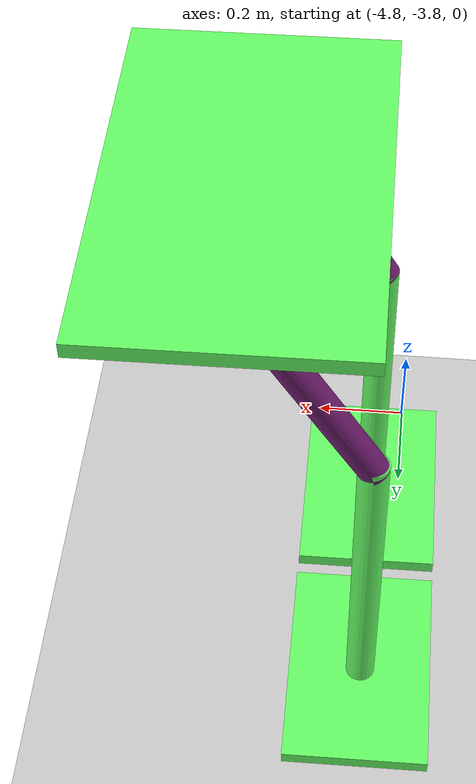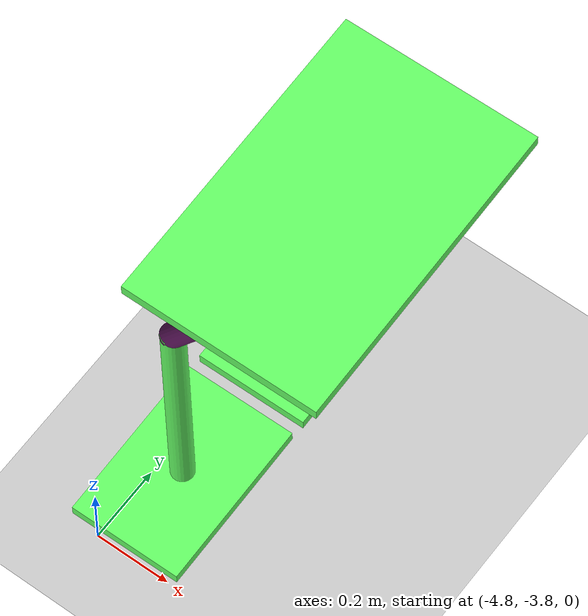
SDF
<sdf version="1.6">
 <world name="default">
  <model name="ground_plane">
   <static>1</static>
   <link name="link">
    <collision name="collision">
     <geometry><plane><normal>0 0 1</normal><size>100 100</size></plane></geometry>
     <surface><friction><ode><mu>100</mu><mu2>50</mu2></ode></friction></surface>
    </collision>
    <visual name="visual">
     <cast_shadows>0</cast_shadows>
     <geometry><plane><normal>0 0 1</normal><size>100 100</size></plane></geometry>
     <material>
      <script><uri>file://media/materials/scripts/gazebo.material</uri><name>Gazebo/Grey</name></script>
     </material>
    </visual>
   </link>
  </model>
  <model name="HumanoidRobot">
   <link name="link_0">
    <inertial>
     <mass>0.5</mass>
     <inertia>
      <ixx>0.166667</ixx>
      <ixy>0</ixy>
      <ixz>0</ixz>
      <iyy>0.166667</iyy>
      <iyz>0</iyz>
      <izz>0.166667</izz>
     </inertia>
    </inertial>
    <pose>-0.001429 0.140202 1.05373 0 -0 0</pose>
    <visual name="visual">
     <geometry><box><size>0.8 0.5 0.03</size></box></geometry>
     <material>
      <lighting>1</lighting>
      <script><uri>file://media/materials/scripts/gazebo.material</uri><name>Gazebo/Grey</name></script>
      <shader type="pixel"><normal_map>__default__</normal_map></shader>
      <ambient>0.1 1 0.1 1</ambient>
      <diffuse>0.4 1 0.4 1</diffuse>
      <specular>0.01 0.01 0.01 1</specular>
      <emissive>0 0 0 1</emissive>
     </material>
    </visual>
    <collision name="collision">
     <geometry><box><size>0.8 0.5 0.03</size></box></geometry>
     <surface>
      <friction>
       <ode><mu>1</mu><mu2>1</mu2><fdir1>0 0 0</fdir1><slip1>0</slip1><slip2>0</slip2></ode>
       <torsional>
        <coefficient>1</coefficient>
        <patch_radius>0</patch_radius>
        <surface_radius>0</surface_radius>
        <use_patch_radius>1</use_patch_radius>
        <ode><slip>0</slip></ode>
       </torsional>
      </friction>
      <bounce><restitution_coefficient>0</restitution_coefficient><threshold>1e+06</threshold></bounce>
      <contact>
       <collide_without_contact>0</collide_without_contact>
       <collide_without_contact_bitmask>1</collide_without_contact_bitmask>
       <collide_bitmask>1</collide_bitmask>
       <ode>
        <soft_cfm>0</soft_cfm>
        <soft_erp>0.2</soft_erp>
        <kp>1e+13</kp>
        <kd>1</kd>
        <max_vel>0.01</max_vel>
        <min_depth>0</min_depth>
       </ode>
       <bullet>
        <split_impulse>1</split_impulse>
        <split_impulse_penetration_threshold>-0.01</split_impulse_penetration_threshold>
        <soft_cfm>0</soft_cfm>
        <soft_erp>0.2</soft_erp>
        <kp>1e+13</kp>
        <kd>1</kd>
       </bullet>
      </contact>
     </surface>
    </collision>
   </link>
   <link name="link_1">
    <inertial>
     <mass>1</mass>
     <inertia>
      <ixx>0.166667</ixx>
      <ixy>0</ixy>
      <ixz>0</ixz>
      <iyy>0.166667</iyy>
      <iyz>0</iyz>
      <izz>0.166667</izz>
     </inertia>
    </inertial>
    <pose>-0.241429 -0.104023 -0.081476 0 -0 0</pose>
    <visual name="visual">
     <geometry><box><size>0.45 0.3 0.03</size></box></geometry>
     <material>
      <lighting>1</lighting>
      <script><uri>file://media/materials/scripts/gazebo.material</uri><name>Gazebo/Grey</name></script>
      <shader type="pixel"><normal_map>__default__</normal_map></shader>
      <ambient>0.1 1 0.1 1</ambient>
      <diffuse>0.4 1 0.4 1</diffuse>
      <specular>0.01 0.01 0.01 1</specular>
      <emissive>0 0 0 1</emissive>
     </material>
    </visual>
    <collision name="collision">
     <geometry><box><size>0.45 0.3 0.03</size></box></geometry>
     <surface>
      <friction>
       <ode><mu>1</mu><mu2>1</mu2><fdir1>0 0 0</fdir1><slip1>0</slip1><slip2>0</slip2></ode>
       <torsional>
        <coefficient>1</coefficient>
        <patch_radius>0</patch_radius>
        <surface_radius>0</surface_radius>
        <use_patch_radius>1</use_patch_radius>
        <ode><slip>0</slip></ode>
       </torsional>
      </friction>
      <bounce><restitution_coefficient>0</restitution_coefficient><threshold>1e+06</threshold></bounce>
      <contact>
       <collide_without_contact>0</collide_without_contact>
       <collide_without_contact_bitmask>1</collide_without_contact_bitmask>
       <collide_bitmask>1</collide_bitmask>
       <ode>
        <soft_cfm>0</soft_cfm>
        <soft_erp>0.2</soft_erp>
        <kp>1e+13</kp>
        <kd>1</kd>
        <max_vel>0.01</max_vel>
        <min_depth>0</min_depth>
       </ode>
       <bullet>
        <split_impulse>1</split_impulse>
        <split_impulse_penetration_threshold>-0.01</split_impulse_penetration_threshold>
        <soft_cfm>0</soft_cfm>
        <soft_erp>0.2</soft_erp>
        <kp>1e+13</kp>
        <kd>1</kd>
       </bullet>
      </contact>
     </surface>
    </collision>
   </link>
   <link name="link_1_clone">
    <inertial>
     <mass>0.5</mass>
     <inertia>
      <ixx>0.166667</ixx>
      <ixy>0</ixy>
      <ixz>0</ixz>
      <iyy>0.166667</iyy>
      <iyz>0</iyz>
      <izz>0.166667</izz>
     </inertia>
    </inertial>
    <pose>0.248571 -0.105528 -0.074363 0 -0 0</pose>
    <visual name="visual">
     <geometry><box><size>0.45 0.3 0.03</size></box></geometry>
     <material>
      <lighting>1</lighting>
      <script><uri>file://media/materials/scripts/gazebo.material</uri><name>Gazebo/Grey</name></script>
      <shader type="pixel"><normal_map>__default__</normal_map></shader>
      <ambient>0.1 1 0.1 1</ambient>
      <diffuse>0.4 1 0.4 1</diffuse>
      <specular>0.01 0.01 0.01 1</specular>
      <emissive>0 0 0 1</emissive>
     </material>
    </visual>
    <collision name="collision">
     <geometry><box><size>0.45 0.3 0.03</size></box></geometry>
     <surface>
      <friction>
       <ode><mu>1</mu><mu2>1</mu2><fdir1>0 0 0</fdir1><slip1>0</slip1><slip2>0</slip2></ode>
       <torsional>
        <coefficient>1</coefficient>
        <patch_radius>0</patch_radius>
        <surface_radius>0</surface_radius>
        <use_patch_radius>1</use_patch_radius>
        <ode><slip>0</slip></ode>
       </torsional>
      </friction>
      <bounce><restitution_coefficient>0</restitution_coefficient><threshold>1e+06</threshold></bounce>
      <contact>
       <collide_without_contact>0</collide_without_contact>
       <collide_without_contact_bitmask>1</collide_without_contact_bitmask>
       <collide_bitmask>1</collide_bitmask>
       <ode>
        <soft_cfm>0</soft_cfm>
        <soft_erp>0.2</soft_erp>
        <kp>1e+13</kp>
        <kd>1</kd>
        <max_vel>0.01</max_vel>
        <min_depth>0</min_depth>
       </ode>
       <bullet>
        <split_impulse>1</split_impulse>
        <split_impulse_penetration_threshold>-0.01</split_impulse_penetration_threshold>
        <soft_cfm>0</soft_cfm>
        <soft_erp>0.2</soft_erp>
        <kp>1e+13</kp>
        <kd>1</kd>
       </bullet>
      </contact>
     </surface>
    </collision>
   </link>
   <link name="link_2">
    <inertial>
     <mass>0.5</mass>
     <inertia><ixx>0.145833</ixx><ixy>0</ixy><ixz>0</ixz><iyy>0.145833</iyy><iyz>0</iyz><izz>0.125</izz></inertia>
    </inertial>
    <pose>-0.251429 -0.105528 0.633067 0 -0 0</pose>
    <visual name="visual">
     <pose>0 0 -0.35 0 -0 0</pose>
     <geometry><cylinder><radius>0.03</radius><length>0.7</length></cylinder></geometry>
     <material>
      <lighting>1</lighting>
      <script><uri>file://media/materials/scripts/gazebo.material</uri><name>Gazebo/Grey</name></script>
      <shader type="pixel"><normal_map>__default__</normal_map></shader>
      <ambient>0.1 1 0.1 1</ambient>
      <diffuse>0.4 1 0.4 1</diffuse>
      <specular>0.01 0.01 0.01 1</specular>
      <emissive>0 0 0 1</emissive>
     </material>
    </visual>
    <collision name="collision">
     <pose>0 0 -0.35 0 -0 0</pose>
     <geometry><cylinder><radius>0.03</radius><length>0.7</length></cylinder></geometry>
     <surface>
      <friction>
       <ode><mu>1</mu><mu2>1</mu2><fdir1>0 0 0</fdir1><slip1>0</slip1><slip2>0</slip2></ode>
       <torsional>
        <coefficient>1</coefficient>
        <patch_radius>0</patch_radius>
        <surface_radius>0</surface_radius>
        <use_patch_radius>1</use_patch_radius>
        <ode><slip>0</slip></ode>
       </torsional>
      </friction>
      <bounce><restitution_coefficient>0</restitution_coefficient><threshold>1e+06</threshold></bounce>
      <contact>
       <collide_without_contact>0</collide_without_contact>
       <collide_without_contact_bitmask>1</collide_without_contact_bitmask>
       <collide_bitmask>1</collide_bitmask>
       <ode>
        <soft_cfm>0</soft_cfm>
        <soft_erp>0.2</soft_erp>
        <kp>1e+13</kp>
        <kd>1</kd>
        <max_vel>0.01</max_vel>
        <min_depth>0</min_depth>
       </ode>
       <bullet>
        <split_impulse>1</split_impulse>
        <split_impulse_penetration_threshold>-0.01</split_impulse_penetration_threshold>
        <soft_cfm>0</soft_cfm>
        <soft_erp>0.2</soft_erp>
        <kp>1e+13</kp>
        <kd>1</kd>
       </bullet>
      </contact>
     </surface>
    </collision>
   </link>
   <link name="link_2_clone">
    <inertial>
     <mass>1</mass>
     <inertia><ixx>0.145833</ixx><ixy>0</ixy><ixz>0</ixz><iyy>0.145833</iyy><iyz>0</iyz><izz>0.125</izz></inertia>
    </inertial>
    <pose>0.248571 -0.105528 0.62702 0 -0 0</pose>
    <visual name="visual">
     <pose>0 0 -0.35 0 -0 0</pose>
     <geometry><cylinder><radius>0.03</radius><length>0.7</length></cylinder></geometry>
     <material>
      <lighting>1</lighting>
      <script><uri>file://media/materials/scripts/gazebo.material</uri><name>Gazebo/Grey</name></script>
      <shader type="pixel"><normal_map>__default__</normal_map></shader>
      <ambient>0.1 1 0.1 1</ambient>
      <diffuse>0.4 1 0.4 1</diffuse>
      <specular>0.01 0.01 0.01 1</specular>
      <emissive>0 0 0 1</emissive>
     </material>
    </visual>
    <collision name="collision">
     <pose>0 0 -0.35 0 -0 0</pose>
     <geometry><cylinder><radius>0.03</radius><length>0.7</length></cylinder></geometry>
     <surface>
      <friction>
       <ode><mu>1</mu><mu2>1</mu2><fdir1>0 0 0</fdir1><slip1>0</slip1><slip2>0</slip2></ode>
       <torsional>
        <coefficient>1</coefficient>
        <patch_radius>0</patch_radius>
        <surface_radius>0</surface_radius>
        <use_patch_radius>1</use_patch_radius>
        <ode><slip>0</slip></ode>
       </torsional>
      </friction>
      <bounce><restitution_coefficient>0</restitution_coefficient><threshold>1e+06</threshold></bounce>
      <contact>
       <collide_without_contact>0</collide_without_contact>
       <collide_without_contact_bitmask>1</collide_without_contact_bitmask>
       <collide_bitmask>1</collide_bitmask>
       <ode>
        <soft_cfm>0</soft_cfm>
        <soft_erp>0.2</soft_erp>
        <kp>1e+13</kp>
        <kd>1</kd>
        <max_vel>0.01</max_vel>
        <min_depth>0</min_depth>
       </ode>
       <bullet>
        <split_impulse>1</split_impulse>
        <split_impulse_penetration_threshold>-0.01</split_impulse_penetration_threshold>
        <soft_cfm>0</soft_cfm>
        <soft_erp>0.2</soft_erp>
        <kp>1e+13</kp>
        <kd>1</kd>
       </bullet>
      </contact>
     </surface>
    </collision>
   </link>
   <link name="link_3">
    <inertial>
     <mass>1</mass>
     <inertia><ixx>0.145833</ixx><ixy>0</ixy><ixz>0</ixz><iyy>0.145833</iyy><iyz>0</iyz><izz>0.125</izz></inertia>
    </inertial>
    <pose>0.248571 0.140202 1.04601 -0.523 0 0</pose>
    <visual name="visual">
     <pose>0 0 -0.25 0 -0 0</pose>
     <geometry><cylinder><radius>0.03</radius><length>0.5</length></cylinder></geometry>
     <material>
      <lighting>1</lighting>
      <script><uri>file://media/materials/scripts/gazebo.material</uri><name>Gazebo/Grey</name></script>
      <shader type="pixel"><normal_map>__default__</normal_map></shader>
      <ambient>0.1 1 0.1 1</ambient>
      <diffuse>0.4 0.1 0.4 1</diffuse>
      <specular>0.01 0.01 0.01 1</specular>
      <emissive>0 0 0 1</emissive>
     </material>
    </visual>
    <collision name="collision">
     <pose>0 0 -0.25 0 -0 0</pose>
     <geometry><cylinder><radius>0.03</radius><length>0.5</length></cylinder></geometry>
     <surface>
      <friction>
       <ode><mu>1</mu><mu2>1</mu2><fdir1>0 0 0</fdir1><slip1>0</slip1><slip2>0</slip2></ode>
       <torsional>
        <coefficient>1</coefficient>
        <patch_radius>0</patch_radius>
        <surface_radius>0</surface_radius>
        <use_patch_radius>1</use_patch_radius>
        <ode><slip>0</slip></ode>
       </torsional>
      </friction>
      <bounce><restitution_coefficient>0</restitution_coefficient><threshold>1e+06</threshold></bounce>
      <contact>
       <collide_without_contact>0</collide_without_contact>
       <collide_without_contact_bitmask>1</collide_without_contact_bitmask>
       <collide_bitmask>1</collide_bitmask>
       <ode>
        <soft_cfm>0</soft_cfm>
        <soft_erp>0.2</soft_erp>
        <kp>1e+13</kp>
        <kd>1</kd>
        <max_vel>0.01</max_vel>
        <min_depth>0</min_depth>
       </ode>
       <bullet>
        <split_impulse>1</split_impulse>
        <split_impulse_penetration_threshold>-0.01</split_impulse_penetration_threshold>
        <soft_cfm>0</soft_cfm>
        <soft_erp>0.2</soft_erp>
        <kp>1e+13</kp>
        <kd>1</kd>
       </bullet>
      </contact>
     </surface>
    </collision>
   </link>
   <link name="link_3_clone">
    <inertial>
     <mass>1</mass>
     <inertia><ixx>0.145833</ixx><ixy>0</ixy><ixz>0</ixz><iyy>0.145833</iyy><iyz>0</iyz><izz>0.125</izz></inertia>
    </inertial>
    <pose>-0.251429 0.140202 1.04601 -0.523 0 0</pose>
    <visual name="visual">
     <pose>0 0 -0.25 0 -0 0</pose>
     <geometry><cylinder><radius>0.03</radius><length>0.5</length></cylinder></geometry>
     <material>
      <lighting>1</lighting>
      <script><uri>file://media/materials/scripts/gazebo.material</uri><name>Gazebo/Grey</name></script>
      <shader type="pixel"><normal_map>__default__</normal_map></shader>
      <ambient>0.1 1 0.1 1</ambient>
      <diffuse>0.4 0.1 0.4 1</diffuse>
      <specular>0.01 0.01 0.01 1</specular>
      <emissive>0 0 0 1</emissive>
     </material>
    </visual>
    <collision name="collision">
     <pose>0 0 -0.25 0 -0 0</pose>
     <geometry><cylinder><radius>0.03</radius><length>0.5</length></cylinder></geometry>
     <surface>
      <friction>
       <ode><mu>1</mu><mu2>1</mu2><fdir1>0 0 0</fdir1><slip1>0</slip1><slip2>0</slip2></ode>
       <torsional>
        <coefficient>1</coefficient>
        <patch_radius>0</patch_radius>
        <surface_radius>0</surface_radius>
        <use_patch_radius>1</use_patch_radius>
        <ode><slip>0</slip></ode>
       </torsional>
      </friction>
      <bounce><restitution_coefficient>0</restitution_coefficient><threshold>1e+06</threshold></bounce>
      <contact>
       <collide_without_contact>0</collide_without_contact>
       <collide_without_contact_bitmask>1</collide_without_contact_bitmask>
       <collide_bitmask>1</collide_bitmask>
       <ode>
        <soft_cfm>0</soft_cfm>
        <soft_erp>0.2</soft_erp>
        <kp>1e+13</kp>
        <kd>1</kd>
        <max_vel>0.01</max_vel>
        <min_depth>0</min_depth>
       </ode>
       <bullet>
        <split_impulse>1</split_impulse>
        <split_impulse_penetration_threshold>-0.01</split_impulse_penetration_threshold>
        <soft_cfm>0</soft_cfm>
        <soft_erp>0.2</soft_erp>
        <kp>1e+13</kp>
        <kd>1</kd>
       </bullet>
      </contact>
     </surface>
    </collision>
   </link>
   <joint name="link_0_JOINT_0" type="fixed">
    <parent>link_0</parent>
    <child>link_3_clone</child>
    <physics>
     <ode><limit><cfm>0</cfm><erp>0.2</erp></limit><suspension><cfm>0</cfm><erp>0.2</erp></suspension></ode>
    </physics>
   </joint>
   <joint name="link_0_JOINT_1" type="fixed">
    <parent>link_0</parent>
    <child>link_3</child>
    <physics>
     <ode><limit><cfm>0</cfm><erp>0.2</erp></limit><suspension><cfm>0</cfm><erp>0.2</erp></suspension></ode>
    </physics>
   </joint>
   <joint name="link_0_JOINT_2" type="fixed">
    <parent>link_0</parent>
    <child>link_3_clone</child>
    <physics>
     <ode><limit><cfm>0</cfm><erp>0.2</erp></limit><suspension><cfm>0</cfm><erp>0.2</erp></suspension></ode>
    </physics>
   </joint>
   <joint name="link_0_JOINT_3" type="fixed">
    <parent>link_0</parent>
    <child>link_3</child>
    <physics>
     <ode><limit><cfm>0</cfm><erp>0.2</erp></limit><suspension><cfm>0</cfm><erp>0.2</erp></suspension></ode>
    </physics>
   </joint>
   <joint name="link_2_JOINT_6" type="fixed">
    <parent>link_2</parent>
    <child>link_1</child>
    <physics>
     <ode><limit><cfm>0</cfm><erp>0.2</erp></limit><suspension><cfm>0</cfm><erp>0.2</erp></suspension></ode>
    </physics>
   </joint>
   <joint name="link_2_JOINT_8" type="fixed">
    <parent>link_2</parent>
    <child>link_1</child>
    <physics>
     <ode><limit><cfm>0</cfm><erp>0.2</erp></limit><suspension><cfm>0</cfm><erp>0.2</erp></suspension></ode>
    </physics>
   </joint>
   <joint name="link_2_clone_JOINT_7" type="fixed">
    <parent>link_2_clone</parent>
    <child>link_1_clone</child>
    <physics>
     <ode><limit><cfm>0</cfm><erp>0.2</erp></limit><suspension><cfm>0</cfm><erp>0.2</erp></suspension></ode>
    </physics>
   </joint>
   <joint name="link_3_JOINT_1" type="fixed">
    <parent>link_3</parent>
    <child>link_2_clone</child>
    <physics>
     <ode><limit><cfm>0</cfm><erp>0.2</erp></limit><suspension><cfm>0</cfm><erp>0.2</erp></suspension></ode>
    </physics>
   </joint>
   <joint name="link_3_JOINT_5" type="revolute">
    <parent>link_3</parent>
    <child>link_2_clone</child>
    <axis>
     <xyz>1 0 0</xyz>
     <use_parent_model_frame>0</use_parent_model_frame>
     <limit>
      <lower>-1.79769e+308</lower>
      <upper>1.79769e+308</upper>
      <effort>-1</effort>
      <velocity>-1</velocity>
     </limit>
     <dynamics>
      <spring_reference>0</spring_reference>
      <spring_stiffness>0</spring_stiffness>
      <damping>0</damping>
      <friction>0</friction>
     </dynamics>
    </axis>
    <physics>
     <ode><limit><cfm>0</cfm><erp>0.2</erp></limit><suspension><cfm>0</cfm><erp>0.2</erp></suspension></ode>
    </physics>
   </joint>
   <joint name="link_3_clone_JOINT_0" type="fixed">
    <parent>link_3_clone</parent>
    <child>link_2</child>
    <physics>
     <ode><limit><cfm>0</cfm><erp>0.2</erp></limit><suspension><cfm>0</cfm><erp>0.2</erp></suspension></ode>
    </physics>
   </joint>
   <joint name="link_3_clone_JOINT_2" type="fixed">
    <parent>link_3_clone</parent>
    <child>link_2</child>
    <physics>
     <ode><limit><cfm>0</cfm><erp>0.2</erp></limit><suspension><cfm>0</cfm><erp>0.2</erp></suspension></ode>
    </physics>
   </joint>
   <joint name="link_3_clone_JOINT_4" type="revolute">
    <parent>link_3_clone</parent>
    <child>link_2</child>
    <axis>
     <xyz>1 0 0</xyz>
     <use_parent_model_frame>0</use_parent_model_frame>
     <limit>
      <lower>-1.79769e+308</lower>
      <upper>1.79769e+308</upper>
      <effort>-1</effort>
      <velocity>-1</velocity>
     </limit>
     <dynamics>
      <spring_reference>0</spring_reference>
      <spring_stiffness>0</spring_stiffness>
      <damping>0</damping>
      <friction>0</friction>
     </dynamics>
    </axis>
    <physics>
     <ode><limit><cfm>0</cfm><erp>0.2</erp></limit><suspension><cfm>0</cfm><erp>0.2</erp></suspension></ode>
    </physics>
   </joint>
   <static>0</static>
   <pose>-4.63246 -3.31493 0.096217 0 0.014467 -1.5605</pose>
  </model>
 </world>
</sdf>
